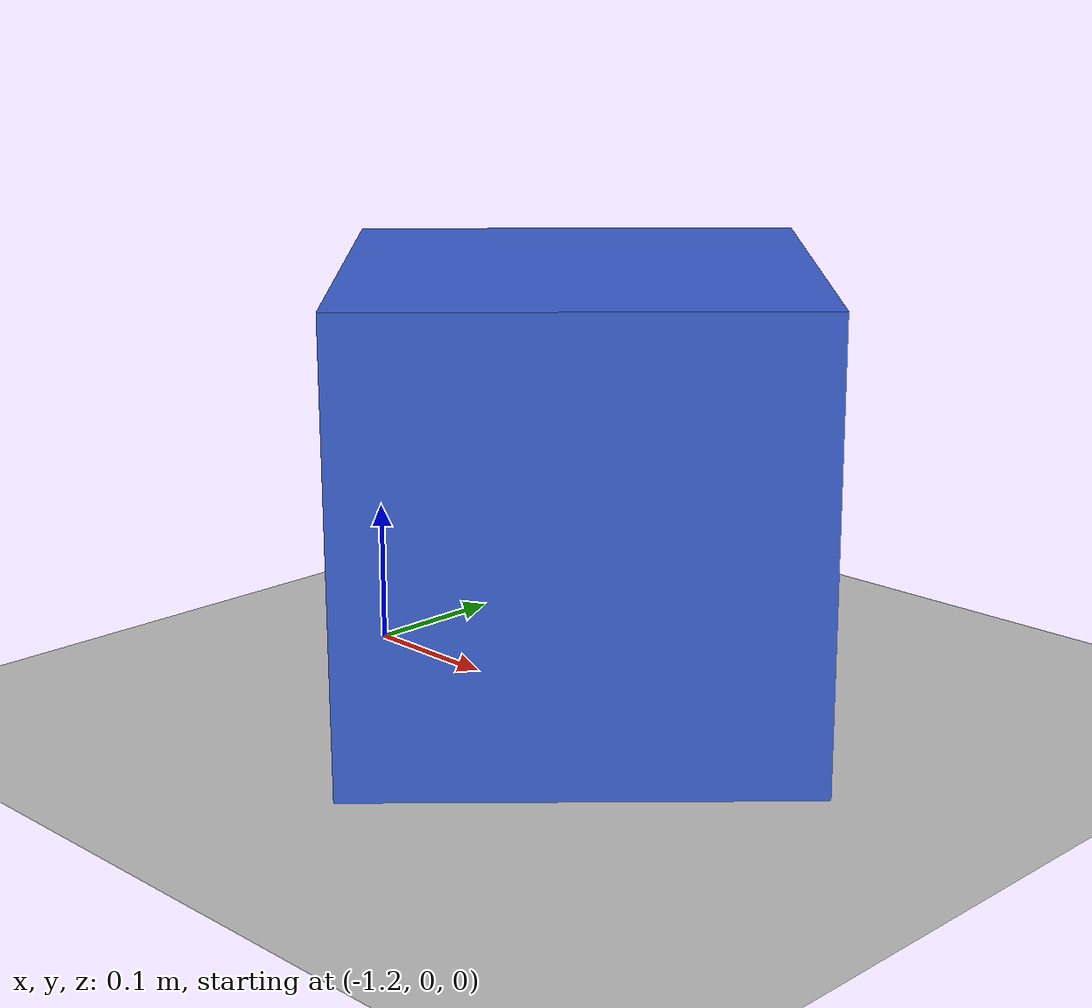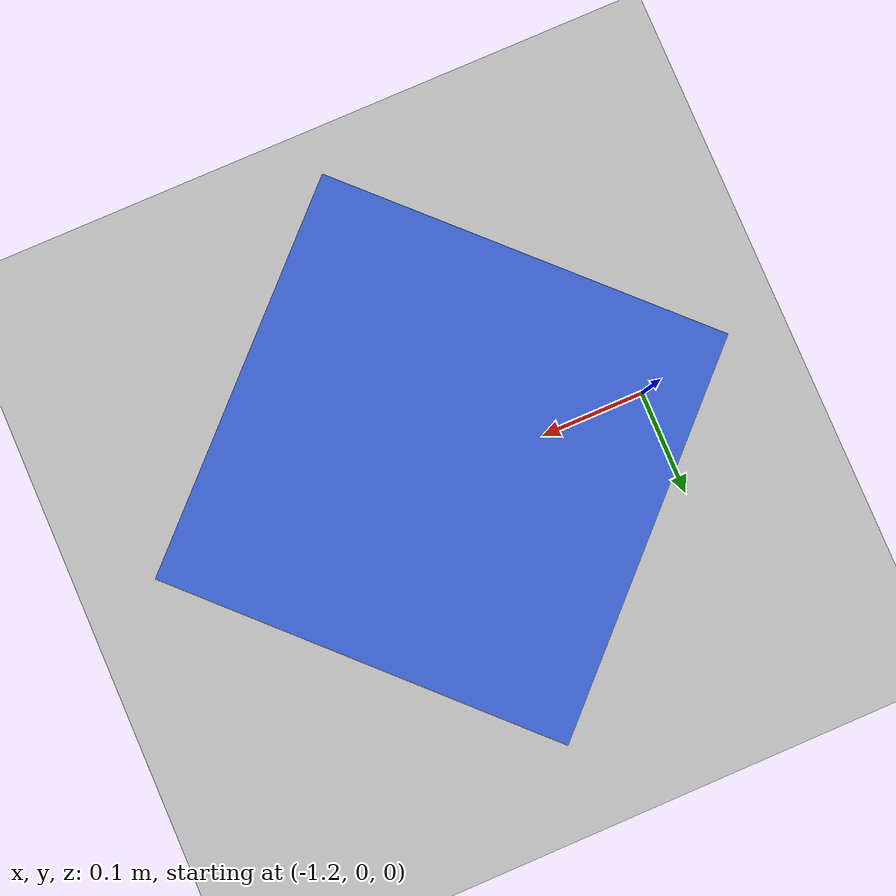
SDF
<?xml version="1.0" ?>
<sdf version='1.4'>
  <world name='default'>

    <physics type='ode'>
      <max_step_size>0.001</max_step_size>
      <real_time_factor>1</real_time_factor>
      <real_time_update_rate>1000</real_time_update_rate>
      <gravity>0 0 -9.8</gravity>
    </physics>

    <spherical_coordinates>
      <surface_model>EARTH_WGS84</surface_model>
      <latitude_deg>0</latitude_deg>
      <longitude_deg>0</longitude_deg>
      <elevation>0</elevation>
      <heading_deg>0</heading_deg>
    </spherical_coordinates>

   <scene>
      <sky>
        <clouds>
          <speed>12</speed>
        </clouds>
      </sky>
   </scene>

    <include>
      <uri>model://sun</uri>
    </include>

    <include>
      <uri>model://ground_plane</uri>
    </include>

    <model name="convex">
      <pose>-1.0 0 0.0 0 0 0.785</pose>
      <link name="body" >
        <pose>0 0 0.15 0 0 0</pose>
        <inertial>
          <mass>1.0</mass>
          <inertia>
            <!-- http://answers.gazebosim.org/question/4372/the-inertia-matrix-explained/ -->
            <ixx>0.015</ixx>   <!-- for a box: ixx = 0.083 * mass * (y*y + z*z) -->
            <ixy>0.0</ixy>        <!-- for a box: ixy = 0 -->
            <ixz>0.0</ixz>        <!-- for a box: ixz = 0 -->
            <iyy>0.015</iyy>   <!-- for a box: iyy = 0.083 * mass * (x*x + z*z) -->
            <iyz>0.0</iyz>        <!-- for a box: iyz = 0 -->
            <izz>0.015</izz>   <!-- for a box: izz = 0.083 * mass * (x*x + y*y) -->
          </inertia>
        </inertial>
        <collision name="collision">
          <geometry>
            <box>
              <size>0.3 0.3 0.3</size>
            </box>
          </geometry>
        </collision>
        <visual name="visual">
          <geometry>
            <box>
              <size>0.3 0.3 0.3</size>
            </box>
          </geometry>
          <material>
            <ambient>0.25 0.41 0.88 1</ambient> <!-- Royal Blue -->
            <diffuse>0.25 0.41 0.88 1</diffuse>
            <specular>0.1 0.1 0.1 1</specular>
            <emissive>0 0 0 0</emissive>
          </material>
        </visual>
        <surface>
          <friction>
            <ode>
              <mu>0.8</mu>
              <mu2>0.8</mu2>
            </ode>
          </friction>
        </surface>
      </link>
      <plugin name="odom" filename="libgazebo_ros_p3d.so" >
        <topicName>object/odom</topicName>
        <bodyName>body</bodyName>
        <updateRate>20.0</updateRate>
      </plugin>
    </model>
  </world>
</sdf>
